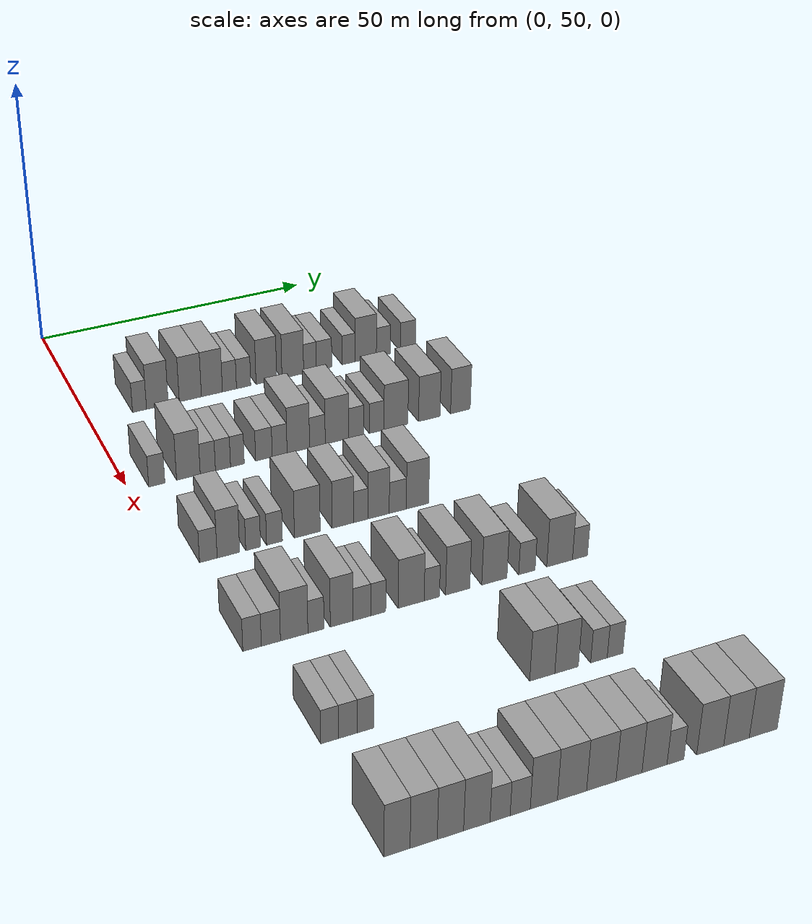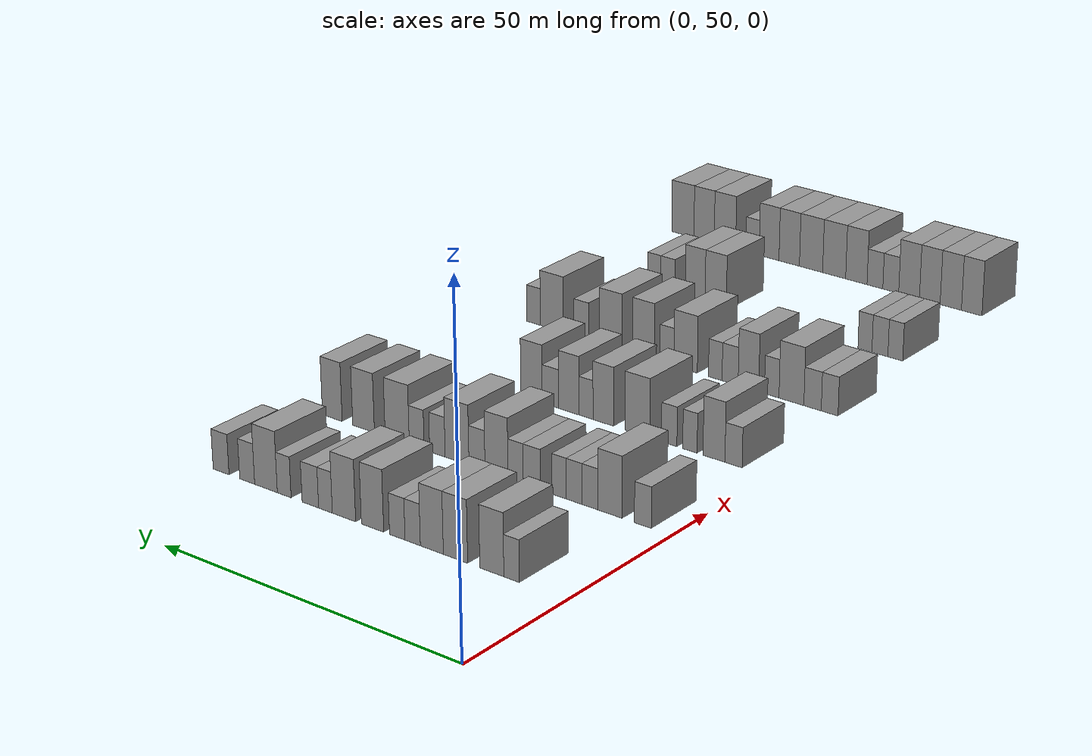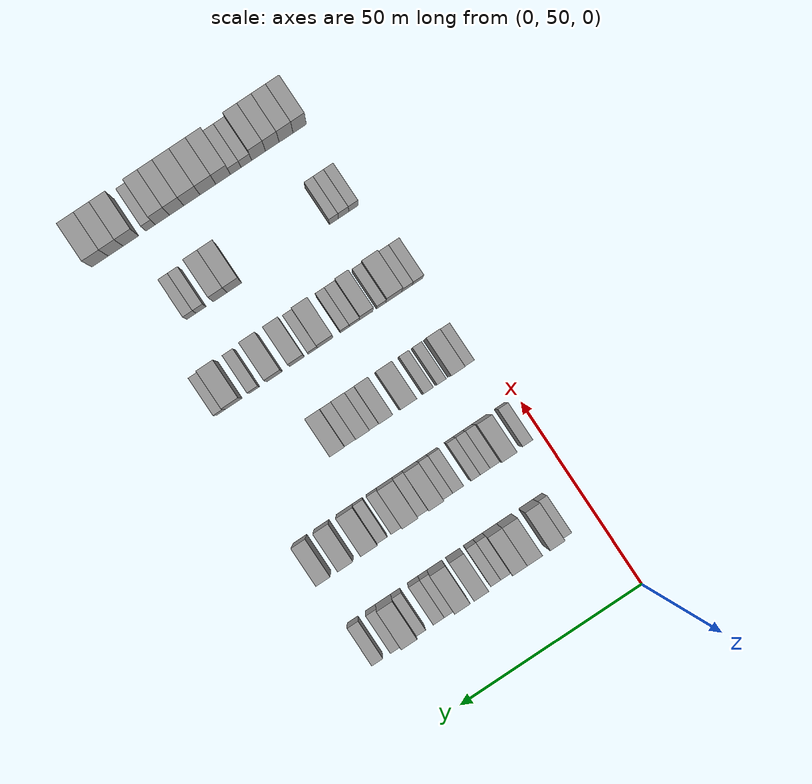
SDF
<sdf version="1.6">
 <world name="default">
  <model name="building_109">
   <static>1</static>
   <pose>25.0000 58.8449 0 0.000000 0.000000 0.000000</pose>
   <link name="link">
    <pose>0 0 3.00 0 0 0</pose>
    <collision name="collision"><geometry><box><size>10.0000 2.5119 6.0000</size></box></geometry></collision>
    <visual name="visual">
     <cast_shadows>0</cast_shadows>
     <geometry><box><size>10.0000 2.5119 6.0000</size></box></geometry>
     <material>
      <script>
       <uri>model://grey_wall/materials/scripts</uri>
       <uri>model://grey_wall/materials/textures</uri>
       <name>vrc/grey_wall</name>
      </script>
     </material>
    </visual>
   </link>
  </model>
  <model name="building_110">
   <static>1</static>
   <pose>25.0000 62.0689 0 0.000000 0.000000 0.000000</pose>
   <link name="link">
    <pose>0 0 4.50 0 0 0</pose>
    <collision name="collision"><geometry><box><size>10.0000 3.9360 9.0000</size></box></geometry></collision>
    <visual name="visual">
     <cast_shadows>0</cast_shadows>
     <geometry><box><size>10.0000 3.9360 9.0000</size></box></geometry>
     <material>
      <script>
       <uri>model://grey_wall/materials/scripts</uri>
       <uri>model://grey_wall/materials/textures</uri>
       <name>vrc/grey_wall</name>
      </script>
     </material>
    </visual>
   </link>
  </model>
  <model name="building_111">
   <static>1</static>
   <pose>25.0000 68.0616 0 0.000000 0.000000 0.000000</pose>
   <link name="link">
    <pose>0 0 4.50 0 0 0</pose>
    <collision name="collision"><geometry><box><size>10.0000 4.0495 9.0000</size></box></geometry></collision>
    <visual name="visual">
     <cast_shadows>0</cast_shadows>
     <geometry><box><size>10.0000 4.0495 9.0000</size></box></geometry>
     <material>
      <script>
       <uri>model://grey_wall/materials/scripts</uri>
       <uri>model://grey_wall/materials/textures</uri>
       <name>vrc/grey_wall</name>
      </script>
     </material>
    </visual>
   </link>
  </model>
  <model name="building_112">
   <static>1</static>
   <pose>25.0000 72.0251 0 0.000000 0.000000 0.000000</pose>
   <link name="link">
    <pose>0 0 4.50 0 0 0</pose>
    <collision name="collision"><geometry><box><size>10.0000 3.8775 9.0000</size></box></geometry></collision>
    <visual name="visual">
     <cast_shadows>0</cast_shadows>
     <geometry><box><size>10.0000 3.8775 9.0000</size></box></geometry>
     <material>
      <script>
       <uri>model://grey_wall/materials/scripts</uri>
       <uri>model://grey_wall/materials/textures</uri>
       <name>vrc/grey_wall</name>
      </script>
     </material>
    </visual>
   </link>
  </model>
  <model name="building_113">
   <static>1</static>
   <pose>25.0000 75.2679 0 0.000000 0.000000 0.000000</pose>
   <link name="link">
    <pose>0 0 3.00 0 0 0</pose>
    <collision name="collision"><geometry><box><size>10.0000 2.6082 6.0000</size></box></geometry></collision>
    <visual name="visual">
     <cast_shadows>0</cast_shadows>
     <geometry><box><size>10.0000 2.6082 6.0000</size></box></geometry>
     <material>
      <script>
       <uri>model://grey_wall/materials/scripts</uri>
       <uri>model://grey_wall/materials/textures</uri>
       <name>vrc/grey_wall</name>
      </script>
     </material>
    </visual>
   </link>
  </model>
  <model name="building_114">
   <static>1</static>
   <pose>25.0000 77.9025 0 0.000000 0.000000 0.000000</pose>
   <link name="link">
    <pose>0 0 3.00 0 0 0</pose>
    <collision name="collision"><geometry><box><size>10.0000 2.6610 6.0000</size></box></geometry></collision>
    <visual name="visual">
     <cast_shadows>0</cast_shadows>
     <geometry><box><size>10.0000 2.6610 6.0000</size></box></geometry>
     <material>
      <script>
       <uri>model://grey_wall/materials/scripts</uri>
       <uri>model://grey_wall/materials/textures</uri>
       <name>vrc/grey_wall</name>
      </script>
     </material>
    </visual>
   </link>
  </model>
  <model name="building_115">
   <static>1</static>
   <pose>25.0000 82.1770 0 0.000000 0.000000 0.000000</pose>
   <link name="link">
    <pose>0 0 4.50 0 0 0</pose>
    <collision name="collision"><geometry><box><size>10.0000 3.8881 9.0000</size></box></geometry></collision>
    <visual name="visual">
     <cast_shadows>0</cast_shadows>
     <geometry><box><size>10.0000 3.8881 9.0000</size></box></geometry>
     <material>
      <script>
       <uri>model://grey_wall/materials/scripts</uri>
       <uri>model://grey_wall/materials/textures</uri>
       <name>vrc/grey_wall</name>
      </script>
     </material>
    </visual>
   </link>
  </model>
  <model name="building_116">
   <static>1</static>
   <pose>25.0000 87.1787 0 0.000000 0.000000 0.000000</pose>
   <link name="link">
    <pose>0 0 4.50 0 0 0</pose>
    <collision name="collision"><geometry><box><size>10.0000 4.1153 9.0000</size></box></geometry></collision>
    <visual name="visual">
     <cast_shadows>0</cast_shadows>
     <geometry><box><size>10.0000 4.1153 9.0000</size></box></geometry>
     <material>
      <script>
       <uri>model://grey_wall/materials/scripts</uri>
       <uri>model://grey_wall/materials/textures</uri>
       <name>vrc/grey_wall</name>
      </script>
     </material>
    </visual>
   </link>
  </model>
  <model name="building_117">
   <static>1</static>
   <pose>25.0000 90.4605 0 0.000000 0.000000 0.000000</pose>
   <link name="link">
    <pose>0 0 3.00 0 0 0</pose>
    <collision name="collision"><geometry><box><size>10.0000 2.4484 6.0000</size></box></geometry></collision>
    <visual name="visual">
     <cast_shadows>0</cast_shadows>
     <geometry><box><size>10.0000 2.4484 6.0000</size></box></geometry>
     <material>
      <script>
       <uri>model://grey_wall/materials/scripts</uri>
       <uri>model://grey_wall/materials/textures</uri>
       <name>vrc/grey_wall</name>
      </script>
     </material>
    </visual>
   </link>
  </model>
  <model name="building_118">
   <static>1</static>
   <pose>25.0000 93.1627 0 0.000000 0.000000 0.000000</pose>
   <link name="link">
    <pose>0 0 3.00 0 0 0</pose>
    <collision name="collision"><geometry><box><size>10.0000 2.9559 6.0000</size></box></geometry></collision>
    <visual name="visual">
     <cast_shadows>0</cast_shadows>
     <geometry><box><size>10.0000 2.9559 6.0000</size></box></geometry>
     <material>
      <script>
       <uri>model://grey_wall/materials/scripts</uri>
       <uri>model://grey_wall/materials/textures</uri>
       <name>vrc/grey_wall</name>
      </script>
     </material>
    </visual>
   </link>
  </model>
  <model name="building_119">
   <static>1</static>
   <pose>25.0000 97.8962 0 0.000000 0.000000 0.000000</pose>
   <link name="link">
    <pose>0 0 3.00 0 0 0</pose>
    <collision name="collision"><geometry><box><size>10.0000 2.5111 6.0000</size></box></geometry></collision>
    <visual name="visual">
     <cast_shadows>0</cast_shadows>
     <geometry><box><size>10.0000 2.5111 6.0000</size></box></geometry>
     <material>
      <script>
       <uri>model://grey_wall/materials/scripts</uri>
       <uri>model://grey_wall/materials/textures</uri>
       <name>vrc/grey_wall</name>
      </script>
     </material>
    </visual>
   </link>
  </model>
  <model name="building_120">
   <static>1</static>
   <pose>25.0000 101.2377 0 0.000000 0.000000 0.000000</pose>
   <link name="link">
    <pose>0 0 4.50 0 0 0</pose>
    <collision name="collision"><geometry><box><size>10.0000 4.1719 9.0000</size></box></geometry></collision>
    <visual name="visual">
     <cast_shadows>0</cast_shadows>
     <geometry><box><size>10.0000 4.1719 9.0000</size></box></geometry>
     <material>
      <script>
       <uri>model://grey_wall/materials/scripts</uri>
       <uri>model://grey_wall/materials/textures</uri>
       <name>vrc/grey_wall</name>
      </script>
     </material>
    </visual>
   </link>
  </model>
  <model name="building_121">
   <static>1</static>
   <pose>25.0000 104.7127 0 0.000000 0.000000 0.000000</pose>
   <link name="link">
    <pose>0 0 3.00 0 0 0</pose>
    <collision name="collision"><geometry><box><size>10.0000 2.7781 6.0000</size></box></geometry></collision>
    <visual name="visual">
     <cast_shadows>0</cast_shadows>
     <geometry><box><size>10.0000 2.7781 6.0000</size></box></geometry>
     <material>
      <script>
       <uri>model://grey_wall/materials/scripts</uri>
       <uri>model://grey_wall/materials/textures</uri>
       <name>vrc/grey_wall</name>
      </script>
     </material>
    </visual>
   </link>
  </model>
  <model name="building_122">
   <static>1</static>
   <pose>25.0000 109.5897 0 0.000000 0.000000 0.000000</pose>
   <link name="link">
    <pose>0 0 3.00 0 0 0</pose>
    <collision name="collision"><geometry><box><size>10.0000 2.9760 6.0000</size></box></geometry></collision>
    <visual name="visual">
     <cast_shadows>0</cast_shadows>
     <geometry><box><size>10.0000 2.9760 6.0000</size></box></geometry>
     <material>
      <script>
       <uri>model://grey_wall/materials/scripts</uri>
       <uri>model://grey_wall/materials/textures</uri>
       <name>vrc/grey_wall</name>
      </script>
     </material>
    </visual>
   </link>
  </model>
  <model name="building_307">
   <static>1</static>
   <pose>47.0000 54.7107 0 0.000000 0.000000 0.000000</pose>
   <link name="link">
    <pose>0 0 3.00 0 0 0</pose>
    <collision name="collision"><geometry><box><size>10.0000 2.7434 6.0000</size></box></geometry></collision>
    <visual name="visual">
     <cast_shadows>0</cast_shadows>
     <geometry><box><size>10.0000 2.7434 6.0000</size></box></geometry>
     <material>
      <script>
       <uri>model://grey_wall/materials/scripts</uri>
       <uri>model://grey_wall/materials/textures</uri>
       <name>vrc/grey_wall</name>
      </script>
     </material>
    </visual>
   </link>
  </model>
  <model name="building_308">
   <static>1</static>
   <pose>47.0000 60.1135 0 0.000000 0.000000 0.000000</pose>
   <link name="link">
    <pose>0 0 4.50 0 0 0</pose>
    <collision name="collision"><geometry><box><size>10.0000 4.0622 9.0000</size></box></geometry></collision>
    <visual name="visual">
     <cast_shadows>0</cast_shadows>
     <geometry><box><size>10.0000 4.0622 9.0000</size></box></geometry>
     <material>
      <script>
       <uri>model://grey_wall/materials/scripts</uri>
       <uri>model://grey_wall/materials/textures</uri>
       <name>vrc/grey_wall</name>
      </script>
     </material>
    </visual>
   </link>
  </model>
  <model name="building_309">
   <static>1</static>
   <pose>47.0000 63.4617 0 0.000000 0.000000 0.000000</pose>
   <link name="link">
    <pose>0 0 3.00 0 0 0</pose>
    <collision name="collision"><geometry><box><size>10.0000 2.6343 6.0000</size></box></geometry></collision>
    <visual name="visual">
     <cast_shadows>0</cast_shadows>
     <geometry><box><size>10.0000 2.6343 6.0000</size></box></geometry>
     <material>
      <script>
       <uri>model://grey_wall/materials/scripts</uri>
       <uri>model://grey_wall/materials/textures</uri>
       <name>vrc/grey_wall</name>
      </script>
     </material>
    </visual>
   </link>
  </model>
  <model name="building_310">
   <static>1</static>
   <pose>47.0000 66.0944 0 0.000000 0.000000 0.000000</pose>
   <link name="link">
    <pose>0 0 3.00 0 0 0</pose>
    <collision name="collision"><geometry><box><size>10.0000 2.6312 6.0000</size></box></geometry></collision>
    <visual name="visual">
     <cast_shadows>0</cast_shadows>
     <geometry><box><size>10.0000 2.6312 6.0000</size></box></geometry>
     <material>
      <script>
       <uri>model://grey_wall/materials/scripts</uri>
       <uri>model://grey_wall/materials/textures</uri>
       <name>vrc/grey_wall</name>
      </script>
     </material>
    </visual>
   </link>
  </model>
  <model name="building_311">
   <static>1</static>
   <pose>47.0000 68.6134 0 0.000000 0.000000 0.000000</pose>
   <link name="link">
    <pose>0 0 3.00 0 0 0</pose>
    <collision name="collision"><geometry><box><size>10.0000 2.4066 6.0000</size></box></geometry></collision>
    <visual name="visual">
     <cast_shadows>0</cast_shadows>
     <geometry><box><size>10.0000 2.4066 6.0000</size></box></geometry>
     <material>
      <script>
       <uri>model://grey_wall/materials/scripts</uri>
       <uri>model://grey_wall/materials/textures</uri>
       <name>vrc/grey_wall</name>
      </script>
     </material>
    </visual>
   </link>
  </model>
  <model name="building_312">
   <static>1</static>
   <pose>47.0000 73.2799 0 0.000000 0.000000 0.000000</pose>
   <link name="link">
    <pose>0 0 3.00 0 0 0</pose>
    <collision name="collision"><geometry><box><size>10.0000 2.9265 6.0000</size></box></geometry></collision>
    <visual name="visual">
     <cast_shadows>0</cast_shadows>
     <geometry><box><size>10.0000 2.9265 6.0000</size></box></geometry>
     <material>
      <script>
       <uri>model://grey_wall/materials/scripts</uri>
       <uri>model://grey_wall/materials/textures</uri>
       <name>vrc/grey_wall</name>
      </script>
     </material>
    </visual>
   </link>
  </model>
  <model name="building_313">
   <static>1</static>
   <pose>47.0000 76.0657 0 0.000000 0.000000 0.000000</pose>
   <link name="link">
    <pose>0 0 3.00 0 0 0</pose>
    <collision name="collision"><geometry><box><size>10.0000 2.6452 6.0000</size></box></geometry></collision>
    <visual name="visual">
     <cast_shadows>0</cast_shadows>
     <geometry><box><size>10.0000 2.6452 6.0000</size></box></geometry>
     <material>
      <script>
       <uri>model://grey_wall/materials/scripts</uri>
       <uri>model://grey_wall/materials/textures</uri>
       <name>vrc/grey_wall</name>
      </script>
     </material>
    </visual>
   </link>
  </model>
  <model name="building_314">
   <static>1</static>
   <pose>47.0000 79.4030 0 0.000000 0.000000 0.000000</pose>
   <link name="link">
    <pose>0 0 4.50 0 0 0</pose>
    <collision name="collision"><geometry><box><size>10.0000 4.0294 9.0000</size></box></geometry></collision>
    <visual name="visual">
     <cast_shadows>0</cast_shadows>
     <geometry><box><size>10.0000 4.0294 9.0000</size></box></geometry>
     <material>
      <script>
       <uri>model://grey_wall/materials/scripts</uri>
       <uri>model://grey_wall/materials/textures</uri>
       <name>vrc/grey_wall</name>
      </script>
     </material>
    </visual>
   </link>
  </model>
  <model name="building_315">
   <static>1</static>
   <pose>47.0000 82.8329 0 0.000000 0.000000 0.000000</pose>
   <link name="link">
    <pose>0 0 3.00 0 0 0</pose>
    <collision name="collision"><geometry><box><size>10.0000 2.8305 6.0000</size></box></geometry></collision>
    <visual name="visual">
     <cast_shadows>0</cast_shadows>
     <geometry><box><size>10.0000 2.8305 6.0000</size></box></geometry>
     <material>
      <script>
       <uri>model://grey_wall/materials/scripts</uri>
       <uri>model://grey_wall/materials/textures</uri>
       <name>vrc/grey_wall</name>
      </script>
     </material>
    </visual>
   </link>
  </model>
  <model name="building_316">
   <static>1</static>
   <pose>47.0000 86.3748 0 0.000000 0.000000 0.000000</pose>
   <link name="link">
    <pose>0 0 4.50 0 0 0</pose>
    <collision name="collision"><geometry><box><size>10.0000 4.2534 9.0000</size></box></geometry></collision>
    <visual name="visual">
     <cast_shadows>0</cast_shadows>
     <geometry><box><size>10.0000 4.2534 9.0000</size></box></geometry>
     <material>
      <script>
       <uri>model://grey_wall/materials/scripts</uri>
       <uri>model://grey_wall/materials/textures</uri>
       <name>vrc/grey_wall</name>
      </script>
     </material>
    </visual>
   </link>
  </model>
  <model name="building_317">
   <static>1</static>
   <pose>47.0000 89.8968 0 0.000000 0.000000 0.000000</pose>
   <link name="link">
    <pose>0 0 3.00 0 0 0</pose>
    <collision name="collision"><geometry><box><size>10.0000 2.7906 6.0000</size></box></geometry></collision>
    <visual name="visual">
     <cast_shadows>0</cast_shadows>
     <geometry><box><size>10.0000 2.7906 6.0000</size></box></geometry>
     <material>
      <script>
       <uri>model://grey_wall/materials/scripts</uri>
       <uri>model://grey_wall/materials/textures</uri>
       <name>vrc/grey_wall</name>
      </script>
     </material>
    </visual>
   </link>
  </model>
  <model name="building_318">
   <static>1</static>
   <pose>47.0000 93.6478 0 0.000000 0.000000 0.000000</pose>
   <link name="link">
    <pose>0 0 3.00 0 0 0</pose>
    <collision name="collision"><geometry><box><size>10.0000 2.7114 6.0000</size></box></geometry></collision>
    <visual name="visual">
     <cast_shadows>0</cast_shadows>
     <geometry><box><size>10.0000 2.7114 6.0000</size></box></geometry>
     <material>
      <script>
       <uri>model://grey_wall/materials/scripts</uri>
       <uri>model://grey_wall/materials/textures</uri>
       <name>vrc/grey_wall</name>
      </script>
     </material>
    </visual>
   </link>
  </model>
  <model name="building_319">
   <static>1</static>
   <pose>47.0000 97.2249 0 0.000000 0.000000 0.000000</pose>
   <link name="link">
    <pose>0 0 4.50 0 0 0</pose>
    <collision name="collision"><geometry><box><size>10.0000 4.4428 9.0000</size></box></geometry></collision>
    <visual name="visual">
     <cast_shadows>0</cast_shadows>
     <geometry><box><size>10.0000 4.4428 9.0000</size></box></geometry>
     <material>
      <script>
       <uri>model://grey_wall/materials/scripts</uri>
       <uri>model://grey_wall/materials/textures</uri>
       <name>vrc/grey_wall</name>
      </script>
     </material>
    </visual>
   </link>
  </model>
  <model name="building_320">
   <static>1</static>
   <pose>47.0000 103.4730 0 0.000000 0.000000 0.000000</pose>
   <link name="link">
    <pose>0 0 4.50 0 0 0</pose>
    <collision name="collision"><geometry><box><size>10.0000 4.0535 9.0000</size></box></geometry></collision>
    <visual name="visual">
     <cast_shadows>0</cast_shadows>
     <geometry><box><size>10.0000 4.0535 9.0000</size></box></geometry>
     <material>
      <script>
       <uri>model://grey_wall/materials/scripts</uri>
       <uri>model://grey_wall/materials/textures</uri>
       <name>vrc/grey_wall</name>
      </script>
     </material>
    </visual>
   </link>
  </model>
  <model name="building_321">
   <static>1</static>
   <pose>47.0000 109.3763 0 0.000000 0.000000 0.000000</pose>
   <link name="link">
    <pose>0 0 4.50 0 0 0</pose>
    <collision name="collision"><geometry><box><size>10.0000 3.7531 9.0000</size></box></geometry></collision>
    <visual name="visual">
     <cast_shadows>0</cast_shadows>
     <geometry><box><size>10.0000 3.7531 9.0000</size></box></geometry>
     <material>
      <script>
       <uri>model://grey_wall/materials/scripts</uri>
       <uri>model://grey_wall/materials/textures</uri>
       <name>vrc/grey_wall</name>
      </script>
     </material>
    </visual>
   </link>
  </model>
  <model name="building_488">
   <static>1</static>
   <pose>69.0000 55.7362 0 0.000000 0.000000 0.000000</pose>
   <link name="link">
    <pose>0 0 3.00 0 0 0</pose>
    <collision name="collision"><geometry><box><size>10.0000 2.8598 6.0000</size></box></geometry></collision>
    <visual name="visual">
     <cast_shadows>0</cast_shadows>
     <geometry><box><size>10.0000 2.8598 6.0000</size></box></geometry>
     <material>
      <script>
       <uri>model://grey_wall/materials/scripts</uri>
       <uri>model://grey_wall/materials/textures</uri>
       <name>vrc/grey_wall</name>
      </script>
     </material>
    </visual>
   </link>
  </model>
  <model name="building_489">
   <static>1</static>
   <pose>69.0000 59.0054 0 0.000000 0.000000 0.000000</pose>
   <link name="link">
    <pose>0 0 4.50 0 0 0</pose>
    <collision name="collision"><geometry><box><size>10.0000 3.6785 9.0000</size></box></geometry></collision>
    <visual name="visual">
     <cast_shadows>0</cast_shadows>
     <geometry><box><size>10.0000 3.6785 9.0000</size></box></geometry>
     <material>
      <script>
       <uri>model://grey_wall/materials/scripts</uri>
       <uri>model://grey_wall/materials/textures</uri>
       <name>vrc/grey_wall</name>
      </script>
     </material>
    </visual>
   </link>
  </model>
  <model name="building_490">
   <static>1</static>
   <pose>69.0000 63.0643 0 0.000000 0.000000 0.000000</pose>
   <link name="link">
    <pose>0 0 3.00 0 0 0</pose>
    <collision name="collision"><geometry><box><size>10.0000 2.4393 6.0000</size></box></geometry></collision>
    <visual name="visual">
     <cast_shadows>0</cast_shadows>
     <geometry><box><size>10.0000 2.4393 6.0000</size></box></geometry>
     <material>
      <script>
       <uri>model://grey_wall/materials/scripts</uri>
       <uri>model://grey_wall/materials/textures</uri>
       <name>vrc/grey_wall</name>
      </script>
     </material>
    </visual>
   </link>
  </model>
  <model name="building_491">
   <static>1</static>
   <pose>69.0000 66.6027 0 0.000000 0.000000 0.000000</pose>
   <link name="link">
    <pose>0 0 3.00 0 0 0</pose>
    <collision name="collision"><geometry><box><size>10.0000 2.6375 6.0000</size></box></geometry></collision>
    <visual name="visual">
     <cast_shadows>0</cast_shadows>
     <geometry><box><size>10.0000 2.6375 6.0000</size></box></geometry>
     <material>
      <script>
       <uri>model://grey_wall/materials/scripts</uri>
       <uri>model://grey_wall/materials/textures</uri>
       <name>vrc/grey_wall</name>
      </script>
     </material>
    </visual>
   </link>
  </model>
  <model name="building_492">
   <static>1</static>
   <pose>69.0000 72.0898 0 0.000000 0.000000 0.000000</pose>
   <link name="link">
    <pose>0 0 4.50 0 0 0</pose>
    <collision name="collision"><geometry><box><size>10.0000 4.3366 9.0000</size></box></geometry></collision>
    <visual name="visual">
     <cast_shadows>0</cast_shadows>
     <geometry><box><size>10.0000 4.3366 9.0000</size></box></geometry>
     <material>
      <script>
       <uri>model://grey_wall/materials/scripts</uri>
       <uri>model://grey_wall/materials/textures</uri>
       <name>vrc/grey_wall</name>
      </script>
     </material>
    </visual>
   </link>
  </model>
  <model name="building_493">
   <static>1</static>
   <pose>69.0000 78.0869 0 0.000000 0.000000 0.000000</pose>
   <link name="link">
    <pose>0 0 4.50 0 0 0</pose>
    <collision name="collision"><geometry><box><size>10.0000 3.6577 9.0000</size></box></geometry></collision>
    <visual name="visual">
     <cast_shadows>0</cast_shadows>
     <geometry><box><size>10.0000 3.6577 9.0000</size></box></geometry>
     <material>
      <script>
       <uri>model://grey_wall/materials/scripts</uri>
       <uri>model://grey_wall/materials/textures</uri>
       <name>vrc/grey_wall</name>
      </script>
     </material>
    </visual>
   </link>
  </model>
  <model name="building_494">
   <static>1</static>
   <pose>69.0000 81.1674 0 0.000000 0.000000 0.000000</pose>
   <link name="link">
    <pose>0 0 3.00 0 0 0</pose>
    <collision name="collision"><geometry><box><size>10.0000 2.5033 6.0000</size></box></geometry></collision>
    <visual name="visual">
     <cast_shadows>0</cast_shadows>
     <geometry><box><size>10.0000 2.5033 6.0000</size></box></geometry>
     <material>
      <script>
       <uri>model://grey_wall/materials/scripts</uri>
       <uri>model://grey_wall/materials/textures</uri>
       <name>vrc/grey_wall</name>
      </script>
     </material>
    </visual>
   </link>
  </model>
  <model name="building_495">
   <static>1</static>
   <pose>69.0000 84.2546 0 0.000000 0.000000 0.000000</pose>
   <link name="link">
    <pose>0 0 4.50 0 0 0</pose>
    <collision name="collision"><geometry><box><size>10.0000 3.6713 9.0000</size></box></geometry></collision>
    <visual name="visual">
     <cast_shadows>0</cast_shadows>
     <geometry><box><size>10.0000 3.6713 9.0000</size></box></geometry>
     <material>
      <script>
       <uri>model://grey_wall/materials/scripts</uri>
       <uri>model://grey_wall/materials/textures</uri>
       <name>vrc/grey_wall</name>
      </script>
     </material>
    </visual>
   </link>
  </model>
  <model name="building_496">
   <static>1</static>
   <pose>69.0000 87.5713 0 0.000000 0.000000 0.000000</pose>
   <link name="link">
    <pose>0 0 3.00 0 0 0</pose>
    <collision name="collision"><geometry><box><size>10.0000 2.9621 6.0000</size></box></geometry></collision>
    <visual name="visual">
     <cast_shadows>0</cast_shadows>
     <geometry><box><size>10.0000 2.9621 6.0000</size></box></geometry>
     <material>
      <script>
       <uri>model://grey_wall/materials/scripts</uri>
       <uri>model://grey_wall/materials/textures</uri>
       <name>vrc/grey_wall</name>
      </script>
     </material>
    </visual>
   </link>
  </model>
  <model name="building_497">
   <static>1</static>
   <pose>69.0000 91.0168 0 0.000000 0.000000 0.000000</pose>
   <link name="link">
    <pose>0 0 4.50 0 0 0</pose>
    <collision name="collision"><geometry><box><size>10.0000 3.9289 9.0000</size></box></geometry></collision>
    <visual name="visual">
     <cast_shadows>0</cast_shadows>
     <geometry><box><size>10.0000 3.9289 9.0000</size></box></geometry>
     <material>
      <script>
       <uri>model://grey_wall/materials/scripts</uri>
       <uri>model://grey_wall/materials/textures</uri>
       <name>vrc/grey_wall</name>
      </script>
     </material>
    </visual>
   </link>
  </model>
  <model name="building_681">
   <static>1</static>
   <pose>91.0000 54.5858 0 0.000000 0.000000 0.000000</pose>
   <link name="link">
    <pose>0 0 3.00 0 0 0</pose>
    <collision name="collision"><geometry><box><size>10.0000 2.8361 6.0000</size></box></geometry></collision>
    <visual name="visual">
     <cast_shadows>0</cast_shadows>
     <geometry><box><size>10.0000 2.8361 6.0000</size></box></geometry>
     <material>
      <script>
       <uri>model://grey_wall/materials/scripts</uri>
       <uri>model://grey_wall/materials/textures</uri>
       <name>vrc/grey_wall</name>
      </script>
     </material>
    </visual>
   </link>
  </model>
  <model name="building_682">
   <static>1</static>
   <pose>91.0000 57.4837 0 0.000000 0.000000 0.000000</pose>
   <link name="link">
    <pose>0 0 3.00 0 0 0</pose>
    <collision name="collision"><geometry><box><size>10.0000 2.9597 6.0000</size></box></geometry></collision>
    <visual name="visual">
     <cast_shadows>0</cast_shadows>
     <geometry><box><size>10.0000 2.9597 6.0000</size></box></geometry>
     <material>
      <script>
       <uri>model://grey_wall/materials/scripts</uri>
       <uri>model://grey_wall/materials/textures</uri>
       <name>vrc/grey_wall</name>
      </script>
     </material>
    </visual>
   </link>
  </model>
  <model name="building_683">
   <static>1</static>
   <pose>91.0000 61.1061 0 0.000000 0.000000 0.000000</pose>
   <link name="link">
    <pose>0 0 4.50 0 0 0</pose>
    <collision name="collision"><geometry><box><size>10.0000 4.2852 9.0000</size></box></geometry></collision>
    <visual name="visual">
     <cast_shadows>0</cast_shadows>
     <geometry><box><size>10.0000 4.2852 9.0000</size></box></geometry>
     <material>
      <script>
       <uri>model://grey_wall/materials/scripts</uri>
       <uri>model://grey_wall/materials/textures</uri>
       <name>vrc/grey_wall</name>
      </script>
     </material>
    </visual>
   </link>
  </model>
  <model name="building_684">
   <static>1</static>
   <pose>91.0000 64.5122 0 0.000000 0.000000 0.000000</pose>
   <link name="link">
    <pose>0 0 3.00 0 0 0</pose>
    <collision name="collision"><geometry><box><size>10.0000 2.5269 6.0000</size></box></geometry></collision>
    <visual name="visual">
     <cast_shadows>0</cast_shadows>
     <geometry><box><size>10.0000 2.5269 6.0000</size></box></geometry>
     <material>
      <script>
       <uri>model://grey_wall/materials/scripts</uri>
       <uri>model://grey_wall/materials/textures</uri>
       <name>vrc/grey_wall</name>
      </script>
     </material>
    </visual>
   </link>
  </model>
  <model name="building_685">
   <static>1</static>
   <pose>91.0000 68.5817 0 0.000000 0.000000 0.000000</pose>
   <link name="link">
    <pose>0 0 4.50 0 0 0</pose>
    <collision name="collision"><geometry><box><size>10.0000 3.6122 9.0000</size></box></geometry></collision>
    <visual name="visual">
     <cast_shadows>0</cast_shadows>
     <geometry><box><size>10.0000 3.6122 9.0000</size></box></geometry>
     <material>
      <script>
       <uri>model://grey_wall/materials/scripts</uri>
       <uri>model://grey_wall/materials/textures</uri>
       <name>vrc/grey_wall</name>
      </script>
     </material>
    </visual>
   </link>
  </model>
  <model name="building_686">
   <static>1</static>
   <pose>91.0000 71.8080 0 0.000000 0.000000 0.000000</pose>
   <link name="link">
    <pose>0 0 3.00 0 0 0</pose>
    <collision name="collision"><geometry><box><size>10.0000 2.8403 6.0000</size></box></geometry></collision>
    <visual name="visual">
     <cast_shadows>0</cast_shadows>
     <geometry><box><size>10.0000 2.8403 6.0000</size></box></geometry>
     <material>
      <script>
       <uri>model://grey_wall/materials/scripts</uri>
       <uri>model://grey_wall/materials/textures</uri>
       <name>vrc/grey_wall</name>
      </script>
     </material>
    </visual>
   </link>
  </model>
  <model name="building_687">
   <static>1</static>
   <pose>91.0000 74.4399 0 0.000000 0.000000 0.000000</pose>
   <link name="link">
    <pose>0 0 3.00 0 0 0</pose>
    <collision name="collision"><geometry><box><size>10.0000 2.4235 6.0000</size></box></geometry></collision>
    <visual name="visual">
     <cast_shadows>0</cast_shadows>
     <geometry><box><size>10.0000 2.4235 6.0000</size></box></geometry>
     <material>
      <script>
       <uri>model://grey_wall/materials/scripts</uri>
       <uri>model://grey_wall/materials/textures</uri>
       <name>vrc/grey_wall</name>
      </script>
     </material>
    </visual>
   </link>
  </model>
  <model name="building_688">
   <static>1</static>
   <pose>91.0000 79.7769 0 0.000000 0.000000 0.000000</pose>
   <link name="link">
    <pose>0 0 4.50 0 0 0</pose>
    <collision name="collision"><geometry><box><size>10.0000 4.2504 9.0000</size></box></geometry></collision>
    <visual name="visual">
     <cast_shadows>0</cast_shadows>
     <geometry><box><size>10.0000 4.2504 9.0000</size></box></geometry>
     <material>
      <script>
       <uri>model://grey_wall/materials/scripts</uri>
       <uri>model://grey_wall/materials/textures</uri>
       <name>vrc/grey_wall</name>
      </script>
     </material>
    </visual>
   </link>
  </model>
  <model name="building_689">
   <static>1</static>
   <pose>91.0000 83.1659 0 0.000000 0.000000 0.000000</pose>
   <link name="link">
    <pose>0 0 3.00 0 0 0</pose>
    <collision name="collision"><geometry><box><size>10.0000 2.5276 6.0000</size></box></geometry></collision>
    <visual name="visual">
     <cast_shadows>0</cast_shadows>
     <geometry><box><size>10.0000 2.5276 6.0000</size></box></geometry>
     <material>
      <script>
       <uri>model://grey_wall/materials/scripts</uri>
       <uri>model://grey_wall/materials/textures</uri>
       <name>vrc/grey_wall</name>
      </script>
     </material>
    </visual>
   </link>
  </model>
  <model name="building_690">
   <static>1</static>
   <pose>91.0000 87.4501 0 0.000000 0.000000 0.000000</pose>
   <link name="link">
    <pose>0 0 4.50 0 0 0</pose>
    <collision name="collision"><geometry><box><size>10.0000 4.0409 9.0000</size></box></geometry></collision>
    <visual name="visual">
     <cast_shadows>0</cast_shadows>
     <geometry><box><size>10.0000 4.0409 9.0000</size></box></geometry>
     <material>
      <script>
       <uri>model://grey_wall/materials/scripts</uri>
       <uri>model://grey_wall/materials/textures</uri>
       <name>vrc/grey_wall</name>
      </script>
     </material>
    </visual>
   </link>
  </model>
  <model name="building_691">
   <static>1</static>
   <pose>91.0000 93.5979 0 0.000000 0.000000 0.000000</pose>
   <link name="link">
    <pose>0 0 4.50 0 0 0</pose>
    <collision name="collision"><geometry><box><size>10.0000 4.2546 9.0000</size></box></geometry></collision>
    <visual name="visual">
     <cast_shadows>0</cast_shadows>
     <geometry><box><size>10.0000 4.2546 9.0000</size></box></geometry>
     <material>
      <script>
       <uri>model://grey_wall/materials/scripts</uri>
       <uri>model://grey_wall/materials/textures</uri>
       <name>vrc/grey_wall</name>
      </script>
     </material>
    </visual>
   </link>
  </model>
  <model name="building_692">
   <static>1</static>
   <pose>91.0000 99.1298 0 0.000000 0.000000 0.000000</pose>
   <link name="link">
    <pose>0 0 3.00 0 0 0</pose>
    <collision name="collision"><geometry><box><size>10.0000 2.8091 6.0000</size></box></geometry></collision>
    <visual name="visual">
     <cast_shadows>0</cast_shadows>
     <geometry><box><size>10.0000 2.8091 6.0000</size></box></geometry>
     <material>
      <script>
       <uri>model://grey_wall/materials/scripts</uri>
       <uri>model://grey_wall/materials/textures</uri>
       <name>vrc/grey_wall</name>
      </script>
     </material>
    </visual>
   </link>
  </model>
  <model name="building_693">
   <static>1</static>
   <pose>91.0000 104.7633 0 0.000000 0.000000 0.000000</pose>
   <link name="link">
    <pose>0 0 4.50 0 0 0</pose>
    <collision name="collision"><geometry><box><size>10.0000 4.4579 9.0000</size></box></geometry></collision>
    <visual name="visual">
     <cast_shadows>0</cast_shadows>
     <geometry><box><size>10.0000 4.4579 9.0000</size></box></geometry>
     <material>
      <script>
       <uri>model://grey_wall/materials/scripts</uri>
       <uri>model://grey_wall/materials/textures</uri>
       <name>vrc/grey_wall</name>
      </script>
     </material>
    </visual>
   </link>
  </model>
  <model name="building_694">
   <static>1</static>
   <pose>91.0000 108.3071 0 0.000000 0.000000 0.000000</pose>
   <link name="link">
    <pose>0 0 3.00 0 0 0</pose>
    <collision name="collision"><geometry><box><size>10.0000 2.6297 6.0000</size></box></geometry></collision>
    <visual name="visual">
     <cast_shadows>0</cast_shadows>
     <geometry><box><size>10.0000 2.6297 6.0000</size></box></geometry>
     <material>
      <script>
       <uri>model://grey_wall/materials/scripts</uri>
       <uri>model://grey_wall/materials/textures</uri>
       <name>vrc/grey_wall</name>
      </script>
     </material>
    </visual>
   </link>
  </model>
  <model name="building_869">
   <static>1</static>
   <pose>113.0000 57.4754 0 0.000000 0.000000 0.000000</pose>
   <link name="link">
    <pose>0 0 3.00 0 0 0</pose>
    <collision name="collision"><geometry><box><size>10.0000 2.5814 6.0000</size></box></geometry></collision>
    <visual name="visual">
     <cast_shadows>0</cast_shadows>
     <geometry><box><size>10.0000 2.5814 6.0000</size></box></geometry>
     <material>
      <script>
       <uri>model://grey_wall/materials/scripts</uri>
       <uri>model://grey_wall/materials/textures</uri>
       <name>vrc/grey_wall</name>
      </script>
     </material>
    </visual>
   </link>
  </model>
  <model name="building_870">
   <static>1</static>
   <pose>113.0000 60.1615 0 0.000000 0.000000 0.000000</pose>
   <link name="link">
    <pose>0 0 3.00 0 0 0</pose>
    <collision name="collision"><geometry><box><size>10.0000 2.7909 6.0000</size></box></geometry></collision>
    <visual name="visual">
     <cast_shadows>0</cast_shadows>
     <geometry><box><size>10.0000 2.7909 6.0000</size></box></geometry>
     <material>
      <script>
       <uri>model://grey_wall/materials/scripts</uri>
       <uri>model://grey_wall/materials/textures</uri>
       <name>vrc/grey_wall</name>
      </script>
     </material>
    </visual>
   </link>
  </model>
  <model name="building_871">
   <static>1</static>
   <pose>113.0000 62.7848 0 0.000000 0.000000 0.000000</pose>
   <link name="link">
    <pose>0 0 3.00 0 0 0</pose>
    <collision name="collision"><geometry><box><size>10.0000 2.4557 6.0000</size></box></geometry></collision>
    <visual name="visual">
     <cast_shadows>0</cast_shadows>
     <geometry><box><size>10.0000 2.4557 6.0000</size></box></geometry>
     <material>
      <script>
       <uri>model://grey_wall/materials/scripts</uri>
       <uri>model://grey_wall/materials/textures</uri>
       <name>vrc/grey_wall</name>
      </script>
     </material>
    </visual>
   </link>
  </model>
  <model name="building_872">
   <static>1</static>
   <pose>113.0000 90.0183 0 0.000000 0.000000 0.000000</pose>
   <link name="link">
    <pose>0 0 4.50 0 0 0</pose>
    <collision name="collision"><geometry><box><size>10.0000 4.0038 9.0000</size></box></geometry></collision>
    <visual name="visual">
     <cast_shadows>0</cast_shadows>
     <geometry><box><size>10.0000 4.0038 9.0000</size></box></geometry>
     <material>
      <script>
       <uri>model://grey_wall/materials/scripts</uri>
       <uri>model://grey_wall/materials/textures</uri>
       <name>vrc/grey_wall</name>
      </script>
     </material>
    </visual>
   </link>
  </model>
  <model name="building_873">
   <static>1</static>
   <pose>113.0000 93.9152 0 0.000000 0.000000 0.000000</pose>
   <link name="link">
    <pose>0 0 4.50 0 0 0</pose>
    <collision name="collision"><geometry><box><size>10.0000 3.7901 9.0000</size></box></geometry></collision>
    <visual name="visual">
     <cast_shadows>0</cast_shadows>
     <geometry><box><size>10.0000 3.7901 9.0000</size></box></geometry>
     <material>
      <script>
       <uri>model://grey_wall/materials/scripts</uri>
       <uri>model://grey_wall/materials/textures</uri>
       <name>vrc/grey_wall</name>
      </script>
     </material>
    </visual>
   </link>
  </model>
  <model name="building_874">
   <static>1</static>
   <pose>113.0000 99.1634 0 0.000000 0.000000 0.000000</pose>
   <link name="link">
    <pose>0 0 3.00 0 0 0</pose>
    <collision name="collision"><geometry><box><size>10.0000 2.7064 6.0000</size></box></geometry></collision>
    <visual name="visual">
     <cast_shadows>0</cast_shadows>
     <geometry><box><size>10.0000 2.7064 6.0000</size></box></geometry>
     <material>
      <script>
       <uri>model://grey_wall/materials/scripts</uri>
       <uri>model://grey_wall/materials/textures</uri>
       <name>vrc/grey_wall</name>
      </script>
     </material>
    </visual>
   </link>
  </model>
  <model name="building_875">
   <static>1</static>
   <pose>113.0000 101.8024 0 0.000000 0.000000 0.000000</pose>
   <link name="link">
    <pose>0 0 3.00 0 0 0</pose>
    <collision name="collision"><geometry><box><size>10.0000 2.5716 6.0000</size></box></geometry></collision>
    <visual name="visual">
     <cast_shadows>0</cast_shadows>
     <geometry><box><size>10.0000 2.5716 6.0000</size></box></geometry>
     <material>
      <script>
       <uri>model://grey_wall/materials/scripts</uri>
       <uri>model://grey_wall/materials/textures</uri>
       <name>vrc/grey_wall</name>
      </script>
     </material>
    </visual>
   </link>
  </model>
  <model name="building_1050">
   <static>1</static>
   <pose>135.0000 57.5170 0 0.000000 0.000000 0.000000</pose>
   <link name="link">
    <pose>0 0 4.50 0 0 0</pose>
    <collision name="collision"><geometry><box><size>10.0000 3.6294 9.0000</size></box></geometry></collision>
    <visual name="visual">
     <cast_shadows>0</cast_shadows>
     <geometry><box><size>10.0000 3.6294 9.0000</size></box></geometry>
     <material>
      <script>
       <uri>model://grey_wall/materials/scripts</uri>
       <uri>model://grey_wall/materials/textures</uri>
       <name>vrc/grey_wall</name>
      </script>
     </material>
    </visual>
   </link>
  </model>
  <model name="building_1051">
   <static>1</static>
   <pose>135.0000 61.2372 0 0.000000 0.000000 0.000000</pose>
   <link name="link">
    <pose>0 0 4.50 0 0 0</pose>
    <collision name="collision"><geometry><box><size>10.0000 3.8108 9.0000</size></box></geometry></collision>
    <visual name="visual">
     <cast_shadows>0</cast_shadows>
     <geometry><box><size>10.0000 3.8108 9.0000</size></box></geometry>
     <material>
      <script>
       <uri>model://grey_wall/materials/scripts</uri>
       <uri>model://grey_wall/materials/textures</uri>
       <name>vrc/grey_wall</name>
      </script>
     </material>
    </visual>
   </link>
  </model>
  <model name="building_1052">
   <static>1</static>
   <pose>135.0000 65.0126 0 0.000000 0.000000 0.000000</pose>
   <link name="link">
    <pose>0 0 4.50 0 0 0</pose>
    <collision name="collision"><geometry><box><size>10.0000 3.7401 9.0000</size></box></geometry></collision>
    <visual name="visual">
     <cast_shadows>0</cast_shadows>
     <geometry><box><size>10.0000 3.7401 9.0000</size></box></geometry>
     <material>
      <script>
       <uri>model://grey_wall/materials/scripts</uri>
       <uri>model://grey_wall/materials/textures</uri>
       <name>vrc/grey_wall</name>
      </script>
     </material>
    </visual>
   </link>
  </model>
  <model name="building_1053">
   <static>1</static>
   <pose>135.0000 68.7722 0 0.000000 0.000000 0.000000</pose>
   <link name="link">
    <pose>0 0 4.50 0 0 0</pose>
    <collision name="collision"><geometry><box><size>10.0000 3.7791 9.0000</size></box></geometry></collision>
    <visual name="visual">
     <cast_shadows>0</cast_shadows>
     <geometry><box><size>10.0000 3.7791 9.0000</size></box></geometry>
     <material>
      <script>
       <uri>model://grey_wall/materials/scripts</uri>
       <uri>model://grey_wall/materials/textures</uri>
       <name>vrc/grey_wall</name>
      </script>
     </material>
    </visual>
   </link>
  </model>
  <model name="building_1054">
   <static>1</static>
   <pose>135.0000 72.1193 0 0.000000 0.000000 0.000000</pose>
   <link name="link">
    <pose>0 0 3.00 0 0 0</pose>
    <collision name="collision"><geometry><box><size>10.0000 2.9153 6.0000</size></box></geometry></collision>
    <visual name="visual">
     <cast_shadows>0</cast_shadows>
     <geometry><box><size>10.0000 2.9153 6.0000</size></box></geometry>
     <material>
      <script>
       <uri>model://grey_wall/materials/scripts</uri>
       <uri>model://grey_wall/materials/textures</uri>
       <name>vrc/grey_wall</name>
      </script>
     </material>
    </visual>
   </link>
  </model>
  <model name="building_1055">
   <static>1</static>
   <pose>135.0000 75.0385 0 0.000000 0.000000 0.000000</pose>
   <link name="link">
    <pose>0 0 3.00 0 0 0</pose>
    <collision name="collision"><geometry><box><size>10.0000 2.9231 6.0000</size></box></geometry></collision>
    <visual name="visual">
     <cast_shadows>0</cast_shadows>
     <geometry><box><size>10.0000 2.9231 6.0000</size></box></geometry>
     <material>
      <script>
       <uri>model://grey_wall/materials/scripts</uri>
       <uri>model://grey_wall/materials/textures</uri>
       <name>vrc/grey_wall</name>
      </script>
     </material>
    </visual>
   </link>
  </model>
  <model name="building_1056">
   <static>1</static>
   <pose>135.0000 78.4956 0 0.000000 0.000000 0.000000</pose>
   <link name="link">
    <pose>0 0 4.50 0 0 0</pose>
    <collision name="collision"><geometry><box><size>10.0000 3.9911 9.0000</size></box></geometry></collision>
    <visual name="visual">
     <cast_shadows>0</cast_shadows>
     <geometry><box><size>10.0000 3.9911 9.0000</size></box></geometry>
     <material>
      <script>
       <uri>model://grey_wall/materials/scripts</uri>
       <uri>model://grey_wall/materials/textures</uri>
       <name>vrc/grey_wall</name>
      </script>
     </material>
    </visual>
   </link>
  </model>
  <model name="building_1057">
   <static>1</static>
   <pose>135.0000 82.6660 0 0.000000 0.000000 0.000000</pose>
   <link name="link">
    <pose>0 0 4.50 0 0 0</pose>
    <collision name="collision"><geometry><box><size>10.0000 4.3496 9.0000</size></box></geometry></collision>
    <visual name="visual">
     <cast_shadows>0</cast_shadows>
     <geometry><box><size>10.0000 4.3496 9.0000</size></box></geometry>
     <material>
      <script>
       <uri>model://grey_wall/materials/scripts</uri>
       <uri>model://grey_wall/materials/textures</uri>
       <name>vrc/grey_wall</name>
      </script>
     </material>
    </visual>
   </link>
  </model>
  <model name="building_1058">
   <static>1</static>
   <pose>135.0000 87.0525 0 0.000000 0.000000 0.000000</pose>
   <link name="link">
    <pose>0 0 4.50 0 0 0</pose>
    <collision name="collision"><geometry><box><size>10.0000 4.4234 9.0000</size></box></geometry></collision>
    <visual name="visual">
     <cast_shadows>0</cast_shadows>
     <geometry><box><size>10.0000 4.4234 9.0000</size></box></geometry>
     <material>
      <script>
       <uri>model://grey_wall/materials/scripts</uri>
       <uri>model://grey_wall/materials/textures</uri>
       <name>vrc/grey_wall</name>
      </script>
     </material>
    </visual>
   </link>
  </model>
  <model name="building_1059">
   <static>1</static>
   <pose>135.0000 91.2374 0 0.000000 0.000000 0.000000</pose>
   <link name="link">
    <pose>0 0 4.50 0 0 0</pose>
    <collision name="collision"><geometry><box><size>10.0000 3.9464 9.0000</size></box></geometry></collision>
    <visual name="visual">
     <cast_shadows>0</cast_shadows>
     <geometry><box><size>10.0000 3.9464 9.0000</size></box></geometry>
     <material>
      <script>
       <uri>model://grey_wall/materials/scripts</uri>
       <uri>model://grey_wall/materials/textures</uri>
       <name>vrc/grey_wall</name>
      </script>
     </material>
    </visual>
   </link>
  </model>
  <model name="building_1060">
   <static>1</static>
   <pose>135.0000 95.1395 0 0.000000 0.000000 0.000000</pose>
   <link name="link">
    <pose>0 0 4.50 0 0 0</pose>
    <collision name="collision"><geometry><box><size>10.0000 3.8577 9.0000</size></box></geometry></collision>
    <visual name="visual">
     <cast_shadows>0</cast_shadows>
     <geometry><box><size>10.0000 3.8577 9.0000</size></box></geometry>
     <material>
      <script>
       <uri>model://grey_wall/materials/scripts</uri>
       <uri>model://grey_wall/materials/textures</uri>
       <name>vrc/grey_wall</name>
      </script>
     </material>
    </visual>
   </link>
  </model>
  <model name="building_1061">
   <static>1</static>
   <pose>135.0000 98.3777 0 0.000000 0.000000 0.000000</pose>
   <link name="link">
    <pose>0 0 3.00 0 0 0</pose>
    <collision name="collision"><geometry><box><size>10.0000 2.6188 6.0000</size></box></geometry></collision>
    <visual name="visual">
     <cast_shadows>0</cast_shadows>
     <geometry><box><size>10.0000 2.6188 6.0000</size></box></geometry>
     <material>
      <script>
       <uri>model://grey_wall/materials/scripts</uri>
       <uri>model://grey_wall/materials/textures</uri>
       <name>vrc/grey_wall</name>
      </script>
     </material>
    </visual>
   </link>
  </model>
  <model name="building_1062">
   <static>1</static>
   <pose>135.0000 103.8140 0 0.000000 0.000000 0.000000</pose>
   <link name="link">
    <pose>0 0 4.50 0 0 0</pose>
    <collision name="collision"><geometry><box><size>10.0000 4.2537 9.0000</size></box></geometry></collision>
    <visual name="visual">
     <cast_shadows>0</cast_shadows>
     <geometry><box><size>10.0000 4.2537 9.0000</size></box></geometry>
     <material>
      <script>
       <uri>model://grey_wall/materials/scripts</uri>
       <uri>model://grey_wall/materials/textures</uri>
       <name>vrc/grey_wall</name>
      </script>
     </material>
    </visual>
   </link>
  </model>
  <model name="building_1063">
   <static>1</static>
   <pose>135.0000 107.9761 0 0.000000 0.000000 0.000000</pose>
   <link name="link">
    <pose>0 0 4.50 0 0 0</pose>
    <collision name="collision"><geometry><box><size>10.0000 4.0705 9.0000</size></box></geometry></collision>
    <visual name="visual">
     <cast_shadows>0</cast_shadows>
     <geometry><box><size>10.0000 4.0705 9.0000</size></box></geometry>
     <material>
      <script>
       <uri>model://grey_wall/materials/scripts</uri>
       <uri>model://grey_wall/materials/textures</uri>
       <name>vrc/grey_wall</name>
      </script>
     </material>
    </visual>
   </link>
  </model>
  <model name="building_1064">
   <static>1</static>
   <pose>135.0000 112.2555 0 0.000000 0.000000 0.000000</pose>
   <link name="link">
    <pose>0 0 4.50 0 0 0</pose>
    <collision name="collision"><geometry><box><size>10.0000 4.4884 9.0000</size></box></geometry></collision>
    <visual name="visual">
     <cast_shadows>0</cast_shadows>
     <geometry><box><size>10.0000 4.4884 9.0000</size></box></geometry>
     <material>
      <script>
       <uri>model://grey_wall/materials/scripts</uri>
       <uri>model://grey_wall/materials/textures</uri>
       <name>vrc/grey_wall</name>
      </script>
     </material>
    </visual>
   </link>
  </model>
 </world>
</sdf>
